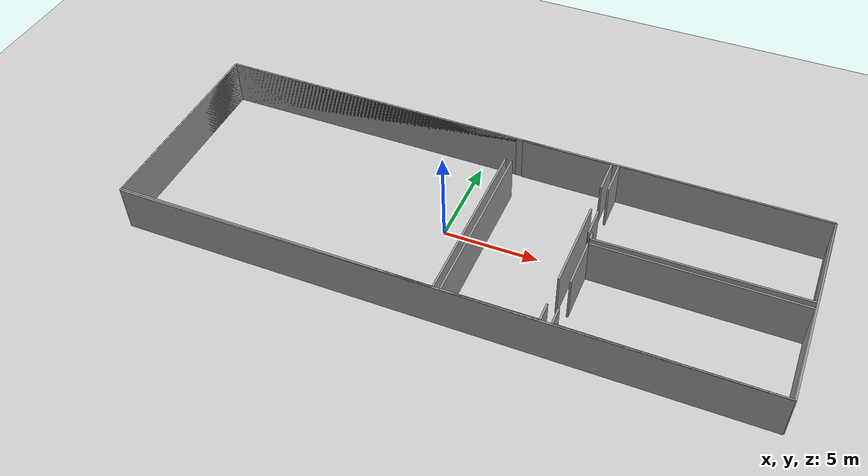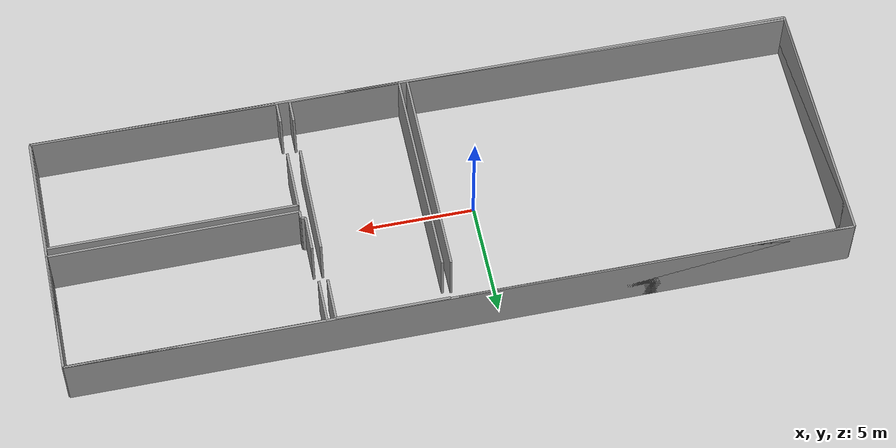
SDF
<sdf version="1.6">
  <world name="default">
    <light name="sun" type="directional">
      <cast_shadows>1</cast_shadows>
      <pose frame="">0 0 10 0 -0 0</pose>
      <diffuse>0.8 0.8 0.8 1</diffuse>
      <specular>0.1 0.1 0.1 1</specular>
      <attenuation>
        <range>1000</range>
        <constant>0.9</constant>
        <linear>0.01</linear>
        <quadratic>0.001</quadratic>
      </attenuation>
      <direction>-0.5 0.5 -1</direction>
    </light>
    <model name="ground_plane">
      <static>1</static>
      <link name="link">
        <collision name="collision">
          <geometry>
            <plane>
              <normal>0 0 1</normal>
              <size>100 100</size>
            </plane>
          </geometry>
          <surface>
            <friction>
              <ode>
                <mu>100</mu>
                <mu2>50</mu2>
              </ode>
              <torsional>
                <ode />
              </torsional>
            </friction>
            <contact>
              <ode />
            </contact>
            <bounce />
          </surface>
          <max_contacts>10</max_contacts>
        </collision>
        <visual name="visual">
          <cast_shadows>0</cast_shadows>
          <geometry>
            <plane>
              <normal>0 0 1</normal>
              <size>100 100</size>
            </plane>
          </geometry>
          <material>
            <script>
              <uri>file://media/materials/scripts/gazebo.material</uri>
              <name>Gazebo/Grey</name>
            </script>
          </material>
        </visual>
        <self_collide>0</self_collide>
        <kinematic>0</kinematic>
        <gravity>1</gravity>
      </link>
    </model>
    <gravity>0 0 -9.8</gravity>
    <magnetic_field>6e-06 2.3e-05 -4.2e-05</magnetic_field>
    <atmosphere type="adiabatic" />
    <physics default="0" name="default_physics" type="ode">
      <max_step_size>0.001</max_step_size>
      <real_time_factor>1</real_time_factor>
      <real_time_update_rate>1000</real_time_update_rate>
    </physics>
    <scene>
      <ambient>0.4 0.4 0.4 1</ambient>
      <background>0.7 0.7 0.7 1</background>
      <shadows>1</shadows>
    </scene>
    <spherical_coordinates>
      <surface_model>EARTH_WGS84</surface_model>
      <latitude_deg>0</latitude_deg>
      <longitude_deg>0</longitude_deg>
      <elevation>0</elevation>
      <heading_deg>0</heading_deg>
    </spherical_coordinates>
  <model name="0510045903_A_40_1_101">
		<static>1</static>
		<link name="Wall_0">
			<collision name="Wall_0_Collision">
				<geometry>
					<box>
						<size>10.8672429233 0.1 2.5</size>
					</box>
				</geometry>
				<pose frame="">5.43362146164 0 1.25 0 0 0</pose>
			</collision>
			<visual name="Wall_0_Visual">
				<pose frame="">5.43362146164 0 1.25 0 0 0</pose>
				<geometry>
					<box>
						<size>10.8672429233 0.1 2.5</size>
					</box>
				</geometry>
				<material>
					<script>
						<uri>file://media/materials/scripts/gazebo.material</uri>
						<name>Gazebo/Grey</name>
					</script>
					<ambient>1 1 1 1</ambient>
				</material>
			</visual>
			<pose frame="">0.0 -10.8672429233 0 0 0 1.57079632679</pose>
		</link>
		<link name="Wall_1">
			<collision name="Wall_1_Collision">
				<geometry>
					<box>
						<size>16.8393107785 0.1 2.5</size>
					</box>
				</geometry>
				<pose frame="">8.41965538923 0 1.25 0 0 0</pose>
			</collision>
			<visual name="Wall_1_Visual">
				<pose frame="">8.41965538923 0 1.25 0 0 0</pose>
				<geometry>
					<box>
						<size>16.8393107785 0.1 2.5</size>
					</box>
				</geometry>
				<material>
					<script>
						<uri>file://media/materials/scripts/gazebo.material</uri>
						<name>Gazebo/Grey</name>
					</script>
					<ambient>1 1 1 1</ambient>
				</material>
			</visual>
			<pose frame="">0.0 -0.0 0 0 0 0.0</pose>
		</link>
		<link name="Wall_2">
			<collision name="Wall_2_Collision">
				<geometry>
					<box>
						<size>9.27362451017 0.1 2.5</size>
					</box>
				</geometry>
				<pose frame="">4.63681225509 0 1.25 0 0 0</pose>
			</collision>
			<visual name="Wall_2_Visual">
				<pose frame="">4.63681225509 0 1.25 0 0 0</pose>
				<geometry>
					<box>
						<size>9.27362451017 0.1 2.5</size>
					</box>
				</geometry>
				<material>
					<script>
						<uri>file://media/materials/scripts/gazebo.material</uri>
						<name>Gazebo/Grey</name>
					</script>
					<ambient>1 1 1 1</ambient>
				</material>
			</visual>
			<pose frame="">16.8393107785 -1.68405809988 0 0 0 -1.57079632679</pose>
		</link>
		<link name="Wall_3">
			<collision name="Wall_3_Collision">
				<geometry>
					<box>
						<size>16.8395536411 0.1 2.5</size>
					</box>
				</geometry>
				<pose frame="">8.41977682053 0 1.25 0 0 0</pose>
			</collision>
			<visual name="Wall_3_Visual">
				<pose frame="">8.41977682053 0 1.25 0 0 0</pose>
				<geometry>
					<box>
						<size>16.8395536411 0.1 2.5</size>
					</box>
				</geometry>
				<material>
					<script>
						<uri>file://media/materials/scripts/gazebo.material</uri>
						<name>Gazebo/Grey</name>
					</script>
					<ambient>1 1 1 1</ambient>
				</material>
			</visual>
			<pose frame="">16.8393107785 -10.95768261 0 0 0 3.1362219577</pose>
		</link>
		<link name="Wall_4">
			<collision name="Wall_4_Collision">
				<geometry>
					<box>
						<size>9.22789657866 0.1 2.5</size>
					</box>
				</geometry>
				<pose frame="">4.61394828933 0 1.25 0 0 0</pose>
			</collision>
			<visual name="Wall_4_Visual">
				<pose frame="">4.61394828933 0 1.25 0 0 0</pose>
				<geometry>
					<box>
						<size>9.22789657866 0.1 2.5</size>
					</box>
				</geometry>
				<material>
					<script>
						<uri>file://media/materials/scripts/gazebo.material</uri>
						<name>Gazebo/Grey</name>
					</script>
					<ambient>1 1 1 1</ambient>
				</material>
			</visual>
			<pose frame="">17.1997993052 -10.9620013591 0 0 0 1.57079632679</pose>
		</link>
		<link name="Wall_5">
			<collision name="Wall_5_Collision">
				<geometry>
					<box>
						<size>4.78619016468 0.1 2.5</size>
					</box>
				</geometry>
				<pose frame="">2.39309508234 0 1.25 0 0 0</pose>
			</collision>
			<visual name="Wall_5_Visual">
				<pose frame="">2.39309508234 0 1.25 0 0 0</pose>
				<geometry>
					<box>
						<size>4.78619016468 0.1 2.5</size>
					</box>
				</geometry>
				<material>
					<script>
						<uri>file://media/materials/scripts/gazebo.material</uri>
						<name>Gazebo/Grey</name>
					</script>
					<ambient>1 1 1 1</ambient>
				</material>
			</visual>
			<pose frame="">17.1997993052 -0.0342959486323 0 0 0 0.0</pose>
		</link>
		<link name="Wall_6">
			<collision name="Wall_6_Collision">
				<geometry>
					<box>
						<size>1.85172718208 0.1 2.5</size>
					</box>
				</geometry>
				<pose frame="">0.92586359104 0 1.25 0 0 0</pose>
			</collision>
			<visual name="Wall_6_Visual">
				<pose frame="">0.92586359104 0 1.25 0 0 0</pose>
				<geometry>
					<box>
						<size>1.85172718208 0.1 2.5</size>
					</box>
				</geometry>
				<material>
					<script>
						<uri>file://media/materials/scripts/gazebo.material</uri>
						<name>Gazebo/Grey</name>
					</script>
					<ambient>1 1 1 1</ambient>
				</material>
			</visual>
			<pose frame="">21.9859894699 -0.0342959486323 0 0 0 -1.57079632679</pose>
		</link>
		<link name="Wall_7">
			<collision name="Wall_7_Collision">
				<geometry>
					<box>
						<size>4.87866220396 0.1 2.5</size>
					</box>
				</geometry>
				<pose frame="">2.43933110198 0 1.25 0 0 0</pose>
			</collision>
			<visual name="Wall_7_Visual">
				<pose frame="">2.43933110198 0 1.25 0 0 0</pose>
				<geometry>
					<box>
						<size>4.87866220396 0.1 2.5</size>
					</box>
				</geometry>
				<material>
					<script>
						<uri>file://media/materials/scripts/gazebo.material</uri>
						<name>Gazebo/Grey</name>
					</script>
					<ambient>1 1 1 1</ambient>
				</material>
			</visual>
			<pose frame="">21.9859894699 -3.48802499794 0 0 0 -1.57079632679</pose>
		</link>
		<link name="Wall_8">
			<collision name="Wall_8_Collision">
				<geometry>
					<box>
						<size>0.977561558052 0.1 2.5</size>
					</box>
				</geometry>
				<pose frame="">0.488780779026 0 1.25 0 0 0</pose>
			</collision>
			<visual name="Wall_8_Visual">
				<pose frame="">0.488780779026 0 1.25 0 0 0</pose>
				<geometry>
					<box>
						<size>0.977561558052 0.1 2.5</size>
					</box>
				</geometry>
				<material>
					<script>
						<uri>file://media/materials/scripts/gazebo.material</uri>
						<name>Gazebo/Grey</name>
					</script>
					<ambient>1 1 1 1</ambient>
				</material>
			</visual>
			<pose frame="">21.9859894699 -9.95420855747 0 0 0 -1.57079632679</pose>
		</link>
		<link name="Wall_9">
			<collision name="Wall_9_Collision">
				<geometry>
					<box>
						<size>4.78628563926 0.1 2.5</size>
					</box>
				</geometry>
				<pose frame="">2.39314281963 0 1.25 0 0 0</pose>
			</collision>
			<visual name="Wall_9_Visual">
				<pose frame="">2.39314281963 0 1.25 0 0 0</pose>
				<geometry>
					<box>
						<size>4.78628563926 0.1 2.5</size>
					</box>
				</geometry>
				<material>
					<script>
						<uri>file://media/materials/scripts/gazebo.material</uri>
						<name>Gazebo/Grey</name>
					</script>
					<ambient>1 1 1 1</ambient>
				</material>
			</visual>
			<pose frame="">21.9859894699 -10.9317701155 0 0 0 -3.13527638939</pose>
		</link>
		<link name="Wall_10">
			<collision name="Wall_10_Collision">
				<geometry>
					<box>
						<size>0.350834852305 0.1 2.5</size>
					</box>
				</geometry>
				<pose frame="">0.175417426153 0 1.25 0 0 0</pose>
			</collision>
			<visual name="Wall_10_Visual">
				<pose frame="">0.175417426153 0 1.25 0 0 0</pose>
				<geometry>
					<box>
						<size>0.350834852305 0.1 2.5</size>
					</box>
				</geometry>
				<material>
					<script>
						<uri>file://media/materials/scripts/gazebo.material</uri>
						<name>Gazebo/Grey</name>
					</script>
					<ambient>1 1 1 1</ambient>
				</material>
			</visual>
			<pose frame="">22.5443783224 -5.39538783002 0 0 0 1.57079632679</pose>
		</link>
		<link name="Wall_11">
			<collision name="Wall_11_Collision">
				<geometry>
					<box>
						<size>0.183927902295 0.1 2.5</size>
					</box>
				</geometry>
				<pose frame="">0.0919639511473 0 1.25 0 0 0</pose>
			</collision>
			<visual name="Wall_11_Visual">
				<pose frame="">0.0919639511473 0 1.25 0 0 0</pose>
				<geometry>
					<box>
						<size>0.183927902295 0.1 2.5</size>
					</box>
				</geometry>
				<material>
					<script>
						<uri>file://media/materials/scripts/gazebo.material</uri>
						<name>Gazebo/Grey</name>
					</script>
					<ambient>1 1 1 1</ambient>
				</material>
			</visual>
			<pose frame="">22.5443783224 -5.04455297771 0 0 0 3.14159265359</pose>
		</link>
		<link name="Wall_12">
			<collision name="Wall_12_Collision">
				<geometry>
					<box>
						<size>1.55347945101 0.1 2.5</size>
					</box>
				</geometry>
				<pose frame="">0.776739725505 0 1.25 0 0 0</pose>
			</collision>
			<visual name="Wall_12_Visual">
				<pose frame="">0.776739725505 0 1.25 0 0 0</pose>
				<geometry>
					<box>
						<size>1.55347945101 0.1 2.5</size>
					</box>
				</geometry>
				<material>
					<script>
						<uri>file://media/materials/scripts/gazebo.material</uri>
						<name>Gazebo/Grey</name>
					</script>
					<ambient>1 1 1 1</ambient>
				</material>
			</visual>
			<pose frame="">22.3604504201 -5.04455297771 0 0 0 1.57079632679</pose>
		</link>
		<link name="Wall_13">
			<collision name="Wall_13_Collision">
				<geometry>
					<box>
						<size>1.88195842569 0.1 2.5</size>
					</box>
				</geometry>
				<pose frame="">0.940979212844 0 1.25 0 0 0</pose>
			</collision>
			<visual name="Wall_13_Visual">
				<pose frame="">0.940979212844 0 1.25 0 0 0</pose>
				<geometry>
					<box>
						<size>1.88195842569 0.1 2.5</size>
					</box>
				</geometry>
				<material>
					<script>
						<uri>file://media/materials/scripts/gazebo.material</uri>
						<name>Gazebo/Grey</name>
					</script>
					<ambient>1 1 1 1</ambient>
				</material>
			</visual>
			<pose frame="">22.3604504201 -1.89643893733 0 0 0 1.57079632679</pose>
		</link>
		<link name="Wall_14">
			<collision name="Wall_14_Collision">
				<geometry>
					<box>
						<size>10.8326929306 0.1 2.5</size>
					</box>
				</geometry>
				<pose frame="">5.41634646529 0 1.25 0 0 0</pose>
			</collision>
			<visual name="Wall_14_Visual">
				<pose frame="">5.41634646529 0 1.25 0 0 0</pose>
				<geometry>
					<box>
						<size>10.8326929306 0.1 2.5</size>
					</box>
				</geometry>
				<material>
					<script>
						<uri>file://media/materials/scripts/gazebo.material</uri>
						<name>Gazebo/Grey</name>
					</script>
					<ambient>1 1 1 1</ambient>
				</material>
			</visual>
			<pose frame="">22.3604504201 -0.0144805116447 0 0 0 0.0</pose>
		</link>
		<link name="Wall_15">
			<collision name="Wall_15_Collision">
				<geometry>
					<box>
						<size>5.31053711266 0.1 2.5</size>
					</box>
				</geometry>
				<pose frame="">2.65526855633 0 1.25 0 0 0</pose>
			</collision>
			<visual name="Wall_15_Visual">
				<pose frame="">2.65526855633 0 1.25 0 0 0</pose>
				<geometry>
					<box>
						<size>5.31053711266 0.1 2.5</size>
					</box>
				</geometry>
				<material>
					<script>
						<uri>file://media/materials/scripts/gazebo.material</uri>
						<name>Gazebo/Grey</name>
					</script>
					<ambient>1 1 1 1</ambient>
				</material>
			</visual>
			<pose frame="">33.1931433507 -0.0144805116447 0 0 0 -1.57079632679</pose>
		</link>
		<link name="Wall_16">
			<collision name="Wall_16_Collision">
				<geometry>
					<box>
						<size>10.6489975394 0.1 2.5</size>
					</box>
				</geometry>
				<pose frame="">5.32449876969 0 1.25 0 0 0</pose>
			</collision>
			<visual name="Wall_16_Visual">
				<pose frame="">5.32449876969 0 1.25 0 0 0</pose>
				<geometry>
					<box>
						<size>10.6489975394 0.1 2.5</size>
					</box>
				</geometry>
				<material>
					<script>
						<uri>file://media/materials/scripts/gazebo.material</uri>
						<name>Gazebo/Grey</name>
					</script>
					<ambient>1 1 1 1</ambient>
				</material>
			</visual>
			<pose frame="">33.1931433507 -5.32501762431 0 0 0 -3.13498445243</pose>
		</link>
		<link name="Wall_17">
			<collision name="Wall_17_Collision">
				<geometry>
					<box>
						<size>0.945552005995 0.1 2.5</size>
					</box>
				</geometry>
				<pose frame="">0.472776002998 0 1.25 0 0 0</pose>
			</collision>
			<visual name="Wall_17_Visual">
				<pose frame="">0.472776002998 0 1.25 0 0 0</pose>
				<geometry>
					<box>
						<size>0.945552005995 0.1 2.5</size>
					</box>
				</geometry>
				<material>
					<script>
						<uri>file://media/materials/scripts/gazebo.material</uri>
						<name>Gazebo/Grey</name>
					</script>
					<ambient>1 1 1 1</ambient>
				</material>
			</visual>
			<pose frame="">22.5494592037 -10.9409157018 0 0 0 1.57079632679</pose>
		</link>
		<link name="Wall_18">
			<collision name="Wall_18_Collision">
				<geometry>
					<box>
						<size>2.62706966523 0.1 2.5</size>
					</box>
				</geometry>
				<pose frame="">1.31353483262 0 1.25 0 0 0</pose>
			</collision>
			<visual name="Wall_18_Visual">
				<pose frame="">1.31353483262 0 1.25 0 0 0</pose>
				<geometry>
					<box>
						<size>2.62706966523 0.1 2.5</size>
					</box>
				</geometry>
				<material>
					<script>
						<uri>file://media/materials/scripts/gazebo.material</uri>
						<name>Gazebo/Grey</name>
					</script>
					<ambient>1 1 1 1</ambient>
				</material>
			</visual>
			<pose frame="">22.5494592037 -8.33798022267 0 0 0 1.57079632679</pose>
		</link>
		<link name="Wall_19">
			<collision name="Wall_19_Collision">
				<geometry>
					<box>
						<size>10.6058315815 0.1 2.5</size>
					</box>
				</geometry>
				<pose frame="">5.30291579074 0 1.25 0 0 0</pose>
			</collision>
			<visual name="Wall_19_Visual">
				<pose frame="">5.30291579074 0 1.25 0 0 0</pose>
				<geometry>
					<box>
						<size>10.6058315815 0.1 2.5</size>
					</box>
				</geometry>
				<material>
					<script>
						<uri>file://media/materials/scripts/gazebo.material</uri>
						<name>Gazebo/Grey</name>
					</script>
					<ambient>1 1 1 1</ambient>
				</material>
			</visual>
			<pose frame="">22.5494592037 -5.71091055744 0 0 0 0.0</pose>
		</link>
		<link name="Wall_20">
			<collision name="Wall_20_Collision">
				<geometry>
					<box>
						<size>5.26557131334 0.1 2.5</size>
					</box>
				</geometry>
				<pose frame="">2.63278565667 0 1.25 0 0 0</pose>
			</collision>
			<visual name="Wall_20_Visual">
				<pose frame="">2.63278565667 0 1.25 0 0 0</pose>
				<geometry>
					<box>
						<size>5.26557131334 0.1 2.5</size>
					</box>
				</geometry>
				<material>
					<script>
						<uri>file://media/materials/scripts/gazebo.material</uri>
						<name>Gazebo/Grey</name>
					</script>
					<ambient>1 1 1 1</ambient>
				</material>
			</visual>
			<pose frame="">33.1552907852 -5.71091055744 0 0 0 -1.57079632679</pose>
		</link>
		<link name="Wall_21">
			<collision name="Wall_21_Collision">
				<geometry>
					<box>
						<size>10.6058912161 0.1 2.5</size>
					</box>
				</geometry>
				<pose frame="">5.30294560804 0 1.25 0 0 0</pose>
			</collision>
			<visual name="Wall_21_Visual">
				<pose frame="">5.30294560804 0 1.25 0 0 0</pose>
				<geometry>
					<box>
						<size>10.6058912161 0.1 2.5</size>
					</box>
				</geometry>
				<material>
					<script>
						<uri>file://media/materials/scripts/gazebo.material</uri>
						<name>Gazebo/Grey</name>
					</script>
					<ambient>1 1 1 1</ambient>
				</material>
			</visual>
			<pose frame="">33.1552907852 -10.9764818708 0 0 0 3.1382392121</pose>
		</link>
		<link name="Wall_22">
			<collision name="Wall_22_Collision">
				<geometry>
					<box>
						<size>10.9764818708 0.1 2.5</size>
					</box>
				</geometry>
				<pose frame="">5.48824093539 0 1.25 0 0 0</pose>
			</collision>
			<visual name="Wall_22_Visual">
				<pose frame="">5.48824093539 0 1.25 0 0 0</pose>
				<geometry>
					<box>
						<size>10.9764818708 0.1 2.5</size>
					</box>
				</geometry>
				<material>
					<script>
						<uri>file://media/materials/scripts/gazebo.material</uri>
						<name>Gazebo/Grey</name>
					</script>
					<ambient>1 1 1 1</ambient>
				</material>
			</visual>
			<pose frame="">33.1931433507 -10.9764818708 0 0 0 1.57079632679</pose>
		</link>
		<link name="Wall_23">
			<collision name="Wall_23_Collision">
				<geometry>
					<box>
						<size>33.1931433507 0.1 2.5</size>
					</box>
				</geometry>
				<pose frame="">16.5965716754 0 1.25 0 0 0</pose>
			</collision>
			<visual name="Wall_23_Visual">
				<pose frame="">16.5965716754 0 1.25 0 0 0</pose>
				<geometry>
					<box>
						<size>33.1931433507 0.1 2.5</size>
					</box>
				</geometry>
				<material>
					<script>
						<uri>file://media/materials/scripts/gazebo.material</uri>
						<name>Gazebo/Grey</name>
					</script>
					<ambient>1 1 1 1</ambient>
				</material>
			</visual>
			<pose frame="">33.1931433507 -10.9764818708 0 0 0 3.14159265359</pose>
		</link>
		<link name="Wall_24">
			<collision name="Wall_24_Collision">
				<geometry>
					<box>
						<size>10.9764818708 0.1 2.5</size>
					</box>
				</geometry>
				<pose frame="">5.48824093539 0 1.25 0 0 0</pose>
			</collision>
			<visual name="Wall_24_Visual">
				<pose frame="">5.48824093539 0 1.25 0 0 0</pose>
				<geometry>
					<box>
						<size>10.9764818708 0.1 2.5</size>
					</box>
				</geometry>
				<material>
					<script>
						<uri>file://media/materials/scripts/gazebo.material</uri>
						<name>Gazebo/Grey</name>
					</script>
					<ambient>1 1 1 1</ambient>
				</material>
			</visual>
			<pose frame="">0.0 -10.9764818708 0 0 0 1.57079632679</pose>
		</link>
		<link name="Wall_25">
			<collision name="Wall_25_Collision">
				<geometry>
					<box>
						<size>33.1931433507 0.1 2.5</size>
					</box>
				</geometry>
				<pose frame="">16.5965716754 0 1.25 0 0 0</pose>
			</collision>
			<visual name="Wall_25_Visual">
				<pose frame="">16.5965716754 0 1.25 0 0 0</pose>
				<geometry>
					<box>
						<size>33.1931433507 0.1 2.5</size>
					</box>
				</geometry>
				<material>
					<script>
						<uri>file://media/materials/scripts/gazebo.material</uri>
						<name>Gazebo/Grey</name>
					</script>
					<ambient>1 1 1 1</ambient>
				</material>
			</visual>
			<pose frame="">0.0 -0.0 0 0 0 0.0</pose>
		</link>
		<pose frame="">-15.05 5.47648187078 0 0 0 0</pose>
	</model>
</world>
</sdf>
